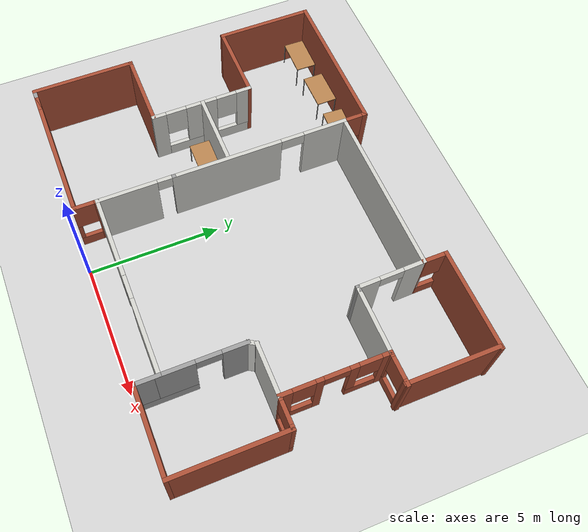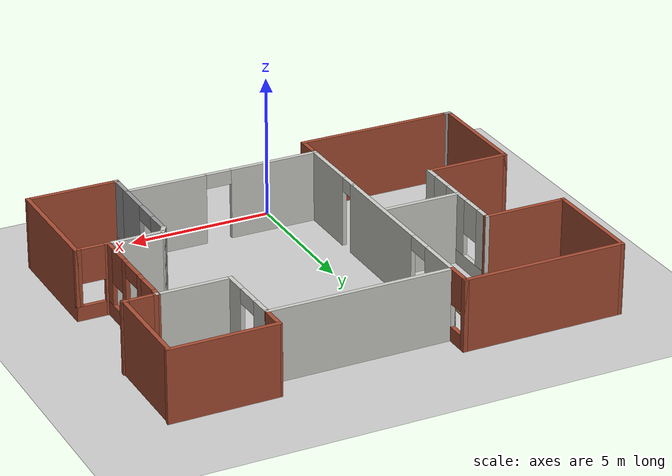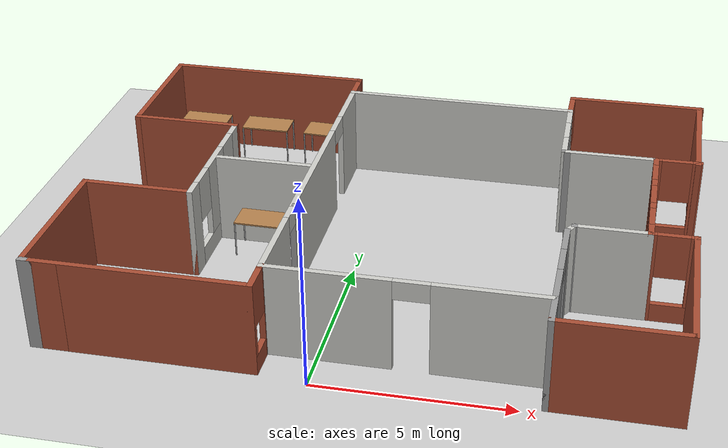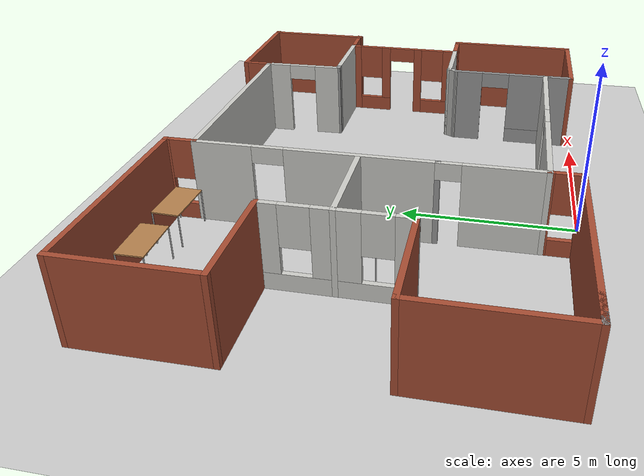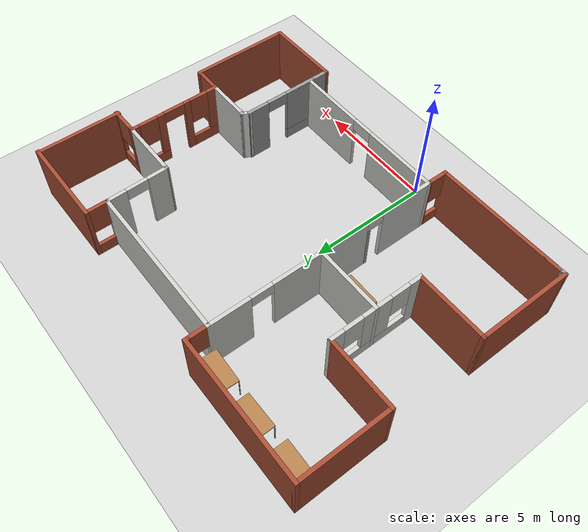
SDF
<sdf version="1.6">
 <world name="default">
  <model name="ground_plane">
   <static>1</static>
   <link name="link">
    <collision name="collision">
     <geometry><plane><normal>0 0 1</normal><size>100 100</size></plane></geometry>
     <surface><friction><ode><mu>100</mu><mu2>50</mu2></ode></friction></surface>
    </collision>
    <visual name="visual">
     <cast_shadows>0</cast_shadows>
     <geometry><plane><normal>0 0 1</normal><size>100 100</size></plane></geometry>
     <material>
      <script><uri>file://media/materials/scripts/gazebo.material</uri><name>Gazebo/Grey</name></script>
     </material>
    </visual>
   </link>
  </model>
  <model name="building_project3">
   <pose>0.90611 5.85511 0 0 -0 0</pose>
   <link name="Wall_0">
    <collision name="Wall_0_Collision">
     <geometry><box><size>4 0.15 2.5</size></box></geometry>
     <pose>0 0 1.25 0 -0 0</pose>
    </collision>
    <visual name="Wall_0_Visual">
     <pose>0 0 1.25 0 -0 0</pose>
     <geometry><box><size>4 0.15 2.5</size></box></geometry>
     <material>
      <script><uri>file://media/materials/scripts/gazebo.material</uri><name>Gazebo/Bricks</name></script>
      <ambient>1 1 1 1</ambient>
     </material>
    </visual>
    <pose>-7.79821 -3.73251 0 0 -0 1.5708</pose>
   </link>
   <link name="Wall_1">
    <collision name="Wall_1_Collision">
     <geometry><box><size>3 0.15 2.5</size></box></geometry>
     <pose>0 0 1.25 0 -0 0</pose>
    </collision>
    <visual name="Wall_1_Visual">
     <pose>0 0 1.25 0 -0 0</pose>
     <geometry><box><size>3 0.15 2.5</size></box></geometry>
     <material>
      <script><uri>file://media/materials/scripts/gazebo.material</uri><name>Gazebo/Bricks</name></script>
      <ambient>1 1 1 1</ambient>
     </material>
    </visual>
    <pose>-6.37322 -1.80751 0 0 -0 0</pose>
   </link>
   <link name="Wall_10">
    <collision name="Wall_10_Collision">
     <geometry><box><size>3.5 0.15 2.5</size></box></geometry>
     <pose>0 0 1.25 0 -0 0</pose>
    </collision>
    <visual name="Wall_10_Visual">
     <pose>0 0 1.25 0 -0 0</pose>
     <geometry><box><size>3.5 0.15 2.5</size></box></geometry>
     <material>
      <script><uri>file://media/materials/scripts/gazebo.material</uri><name>Gazebo/Bricks</name></script>
      <ambient>1 1 1 1</ambient>
     </material>
    </visual>
    <pose>7.75073 3.93568 0 0 0 -1.5708</pose>
   </link>
   <link name="Wall_11">
    <pose>7.22452 2.29985 0 0 0 -3.12875</pose>
    <visual name="Wall_11_Visual_0">
     <pose>-0.512497 0 1.25 0 -0 0</pose>
     <geometry><box><size>0.270574 0.15 2.5</size></box></geometry>
     <material>
      <script><uri>file://media/materials/scripts/gazebo.material</uri><name>Gazebo/Bricks</name></script>
      <ambient>1 1 1 1</ambient>
     </material>
    </visual>
    <collision name="Wall_11_Collision_0">
     <geometry><box><size>0.270574 0.15 2.5</size></box></geometry>
     <pose>-0.512497 0 1.25 0 -0 0</pose>
    </collision>
    <visual name="Wall_11_Visual_1">
     <pose>0.135287 0 0.25 0 -0 0</pose>
     <geometry><box><size>1.02499 0.15 0.5</size></box></geometry>
     <material>
      <script><uri>file://media/materials/scripts/gazebo.material</uri><name>Gazebo/Bricks</name></script>
      <ambient>1 1 1 1</ambient>
     </material>
    </visual>
    <collision name="Wall_11_Collision_1">
     <geometry><box><size>1.02499 0.15 0.5</size></box></geometry>
     <pose>0.135287 0 0.25 0 -0 0</pose>
    </collision>
    <visual name="Wall_11_Visual_2">
     <pose>0.535287 0 1.5 0 -0 0</pose>
     <geometry><box><size>0.224994 0.15 2</size></box></geometry>
     <material>
      <script><uri>file://media/materials/scripts/gazebo.material</uri><name>Gazebo/Bricks</name></script>
      <ambient>1 1 1 1</ambient>
     </material>
    </visual>
    <collision name="Wall_11_Collision_2">
     <geometry><box><size>0.224994 0.15 2</size></box></geometry>
     <pose>0.535287 0 1.5 0 -0 0</pose>
    </collision>
    <visual name="Wall_11_Visual_3">
     <pose>0.02279 0 1.9 0 -0 0</pose>
     <geometry><box><size>0.8 0.15 1.2</size></box></geometry>
     <material>
      <script><uri>file://media/materials/scripts/gazebo.material</uri><name>Gazebo/Bricks</name></script>
      <ambient>1 1 1 1</ambient>
     </material>
    </visual>
    <collision name="Wall_11_Collision_3">
     <geometry><box><size>0.8 0.15 1.2</size></box></geometry>
     <pose>0.02279 0 1.9 0 -0 0</pose>
    </collision>
   </link>
   <link name="Wall_12">
    <pose>6.65179 0.367493 0 0 0 -1.5708</pose>
    <visual name="Wall_12_Visual_0">
     <pose>-1.80898 0 1.25 0 -0 0</pose>
     <geometry><box><size>0.382047 0.15 2.5</size></box></geometry>
     <material>
      <script><uri>file://media/materials/scripts/gazebo.material</uri><name>Gazebo/Bricks</name></script>
      <ambient>1 1 1 1</ambient>
     </material>
    </visual>
    <collision name="Wall_12_Collision_0">
     <geometry><box><size>0.382047 0.15 2.5</size></box></geometry>
     <pose>-1.80898 0 1.25 0 -0 0</pose>
    </collision>
    <visual name="Wall_12_Visual_1">
     <pose>0.546637 0 1.25 0 -0 0</pose>
     <geometry><box><size>0.282756 0.15 2.5</size></box></geometry>
     <material>
      <script><uri>file://media/materials/scripts/gazebo.material</uri><name>Gazebo/Bricks</name></script>
      <ambient>1 1 1 1</ambient>
     </material>
    </visual>
    <collision name="Wall_12_Collision_1">
     <geometry><box><size>0.282756 0.15 2.5</size></box></geometry>
     <pose>0.546637 0 1.25 0 -0 0</pose>
    </collision>
    <visual name="Wall_12_Visual_2">
     <pose>-1.05635 0 0.25 0 -0 0</pose>
     <geometry><box><size>1.12321 0.15 0.5</size></box></geometry>
     <material>
      <script><uri>file://media/materials/scripts/gazebo.material</uri><name>Gazebo/Bricks</name></script>
      <ambient>1 1 1 1</ambient>
     </material>
    </visual>
    <collision name="Wall_12_Collision_2">
     <geometry><box><size>1.12321 0.15 0.5</size></box></geometry>
     <pose>-1.05635 0 0.25 0 -0 0</pose>
    </collision>
    <visual name="Wall_12_Visual_3">
     <pose>1.34401 0 0.25 0 -0 0</pose>
     <geometry><box><size>1.31198 0.15 0.5</size></box></geometry>
     <material>
      <script><uri>file://media/materials/scripts/gazebo.material</uri><name>Gazebo/Bricks</name></script>
      <ambient>1 1 1 1</ambient>
     </material>
    </visual>
    <collision name="Wall_12_Collision_3">
     <geometry><box><size>1.31198 0.15 0.5</size></box></geometry>
     <pose>1.34401 0 0.25 0 -0 0</pose>
    </collision>
    <visual name="Wall_12_Visual_4">
     <pose>-0.656347 0 1.5 0 -0 0</pose>
     <geometry><box><size>0.323212 0.15 2</size></box></geometry>
     <material>
      <script><uri>file://media/materials/scripts/gazebo.material</uri><name>Gazebo/Bricks</name></script>
      <ambient>1 1 1 1</ambient>
     </material>
    </visual>
    <collision name="Wall_12_Collision_4">
     <geometry><box><size>0.323212 0.15 2</size></box></geometry>
     <pose>-0.656347 0 1.5 0 -0 0</pose>
    </collision>
    <visual name="Wall_12_Visual_5">
     <pose>-0.656347 0 1.5 0 -0 0</pose>
     <geometry><box><size>0.323212 0.15 2</size></box></geometry>
     <material>
      <script><uri>file://media/materials/scripts/gazebo.material</uri><name>Gazebo/Bricks</name></script>
      <ambient>1 1 1 1</ambient>
     </material>
    </visual>
    <collision name="Wall_12_Collision_5">
     <geometry><box><size>0.323212 0.15 2</size></box></geometry>
     <pose>-0.656347 0 1.5 0 -0 0</pose>
    </collision>
    <visual name="Wall_12_Visual_6">
     <pose>1.74401 0 1.5 0 -0 0</pose>
     <geometry><box><size>0.511985 0.15 2</size></box></geometry>
     <material>
      <script><uri>file://media/materials/scripts/gazebo.material</uri><name>Gazebo/Bricks</name></script>
      <ambient>1 1 1 1</ambient>
     </material>
    </visual>
    <collision name="Wall_12_Collision_6">
     <geometry><box><size>0.511985 0.15 2</size></box></geometry>
     <pose>1.74401 0 1.5 0 -0 0</pose>
    </collision>
    <visual name="Wall_12_Visual_7">
     <pose>-1.21795 0 1.9 0 -0 0</pose>
     <geometry><box><size>0.8 0.15 1.2</size></box></geometry>
     <material>
      <script><uri>file://media/materials/scripts/gazebo.material</uri><name>Gazebo/Bricks</name></script>
      <ambient>1 1 1 1</ambient>
     </material>
    </visual>
    <collision name="Wall_12_Collision_7">
     <geometry><box><size>0.8 0.15 1.2</size></box></geometry>
     <pose>-1.21795 0 1.9 0 -0 0</pose>
    </collision>
    <visual name="Wall_12_Visual_8">
     <pose>1.08801 0 1.9 0 -0 0</pose>
     <geometry><box><size>0.8 0.15 1.2</size></box></geometry>
     <material>
      <script><uri>file://media/materials/scripts/gazebo.material</uri><name>Gazebo/Bricks</name></script>
      <ambient>1 1 1 1</ambient>
     </material>
    </visual>
    <collision name="Wall_12_Collision_8">
     <geometry><box><size>0.8 0.15 1.2</size></box></geometry>
     <pose>1.08801 0 1.9 0 -0 0</pose>
    </collision>
    <visual name="Wall_12_Visual_9">
     <pose>-0.044741 0 2.25 0 -0 0</pose>
     <geometry><box><size>0.9 0.15 0.5</size></box></geometry>
     <material>
      <script><uri>file://media/materials/scripts/gazebo.material</uri><name>Gazebo/Bricks</name></script>
      <ambient>1 1 1 1</ambient>
     </material>
    </visual>
    <collision name="Wall_12_Collision_9">
     <geometry><box><size>0.9 0.15 0.5</size></box></geometry>
     <pose>-0.044741 0 2.25 0 -0 0</pose>
    </collision>
    <visual name="Wall_12_Visual_10">
     <pose>-0.044741 0 2.25 0 -0 0</pose>
     <geometry><box><size>0.9 0.15 0.5</size></box></geometry>
     <material>
      <script><uri>file://media/materials/scripts/gazebo.material</uri><name>Gazebo/Bricks</name></script>
      <ambient>1 1 1 1</ambient>
     </material>
    </visual>
    <collision name="Wall_12_Collision_10">
     <geometry><box><size>0.9 0.15 0.5</size></box></geometry>
     <pose>-0.044741 0 2.25 0 -0 0</pose>
    </collision>
   </link>
   <link name="Wall_13">
    <pose>7.20179 -1.55751 0 0 -0 0</pose>
    <visual name="Wall_13_Visual_0">
     <pose>-0.511837 0 1.25 0 -0 0</pose>
     <geometry><box><size>0.226327 0.15 2.5</size></box></geometry>
     <material>
      <script><uri>file://media/materials/scripts/gazebo.material</uri><name>Gazebo/Bricks</name></script>
      <ambient>1 1 1 1</ambient>
     </material>
    </visual>
    <collision name="Wall_13_Collision_0">
     <geometry><box><size>0.226327 0.15 2.5</size></box></geometry>
     <pose>-0.511837 0 1.25 0 -0 0</pose>
    </collision>
    <visual name="Wall_13_Visual_1">
     <pose>0.113163 0 0.25 0 -0 0</pose>
     <geometry><box><size>1.02367 0.15 0.5</size></box></geometry>
     <material>
      <script><uri>file://media/materials/scripts/gazebo.material</uri><name>Gazebo/Bricks</name></script>
      <ambient>1 1 1 1</ambient>
     </material>
    </visual>
    <collision name="Wall_13_Collision_1">
     <geometry><box><size>1.02367 0.15 0.5</size></box></geometry>
     <pose>0.113163 0 0.25 0 -0 0</pose>
    </collision>
    <visual name="Wall_13_Visual_2">
     <pose>0.513163 0 1.5 0 -0 0</pose>
     <geometry><box><size>0.223673 0.15 2</size></box></geometry>
     <material>
      <script><uri>file://media/materials/scripts/gazebo.material</uri><name>Gazebo/Bricks</name></script>
      <ambient>1 1 1 1</ambient>
     </material>
    </visual>
    <collision name="Wall_13_Collision_2">
     <geometry><box><size>0.223673 0.15 2</size></box></geometry>
     <pose>0.513163 0 1.5 0 -0 0</pose>
    </collision>
    <visual name="Wall_13_Visual_3">
     <pose>0.001327 0 1.9 0 -0 0</pose>
     <geometry><box><size>0.8 0.15 1.2</size></box></geometry>
     <material>
      <script><uri>file://media/materials/scripts/gazebo.material</uri><name>Gazebo/Bricks</name></script>
      <ambient>1 1 1 1</ambient>
     </material>
    </visual>
    <collision name="Wall_13_Collision_3">
     <geometry><box><size>0.8 0.15 1.2</size></box></geometry>
     <pose>0.001327 0 1.9 0 -0 0</pose>
    </collision>
   </link>
   <link name="Wall_14">
    <collision name="Wall_14_Collision">
     <geometry><box><size>4.25 0.15 2.5</size></box></geometry>
     <pose>0 0 1.25 0 -0 0</pose>
    </collision>
    <visual name="Wall_14_Visual">
     <pose>0 0 1.25 0 -0 0</pose>
     <geometry><box><size>4.25 0.15 2.5</size></box></geometry>
     <material>
      <script><uri>file://media/materials/scripts/gazebo.material</uri><name>Gazebo/Bricks</name></script>
      <ambient>1 1 1 1</ambient>
     </material>
    </visual>
    <pose>7.75178 -3.60751 0 0 0 -1.5708</pose>
   </link>
   <link name="Wall_15">
    <collision name="Wall_15_Collision">
     <geometry><box><size>3.25 0.15 2.5</size></box></geometry>
     <pose>0 0 1.25 0 -0 0</pose>
    </collision>
    <visual name="Wall_15_Visual">
     <pose>0 0 1.25 0 -0 0</pose>
     <geometry><box><size>3.25 0.15 2.5</size></box></geometry>
     <material>
      <script><uri>file://media/materials/scripts/gazebo.material</uri><name>Gazebo/Bricks</name></script>
      <ambient>1 1 1 1</ambient>
     </material>
    </visual>
    <pose>6.20179 -5.65751 0 0 -0 3.14159</pose>
   </link>
   <link name="Wall_16">
    <collision name="Wall_16_Collision">
     <geometry><box><size>1 0.15 2.5</size></box></geometry>
     <pose>0 0 1.25 0 -0 0</pose>
    </collision>
    <visual name="Wall_16_Visual">
     <pose>0 0 1.25 0 -0 0</pose>
     <geometry><box><size>1 0.15 2.5</size></box></geometry>
     <material>
      <script><uri>file://media/materials/scripts/gazebo.material</uri><name>Gazebo/Grey</name></script>
      <ambient>1 1 1 1</ambient>
     </material>
    </visual>
    <pose>4.65179 -5.23251 0 0 -0 1.5708</pose>
   </link>
   <link name="Wall_17">
    <pose>1.22679 -4.80751 0 0 -0 3.14159</pose>
    <visual name="Wall_17_Visual_0">
     <pose>-2.05036 0 1.25 0 -0 0</pose>
     <geometry><box><size>2.89928 0.15 2.5</size></box></geometry>
     <material>
      <script><uri>file://media/materials/scripts/gazebo.material</uri><name>Gazebo/CeilingTiled</name></script>
      <ambient>1 1 1 1</ambient>
     </material>
    </visual>
    <collision name="Wall_17_Collision_0">
     <geometry><box><size>2.89928 0.15 2.5</size></box></geometry>
     <pose>-2.05036 0 1.25 0 -0 0</pose>
    </collision>
    <visual name="Wall_17_Visual_1">
     <pose>1.89964 0 1.25 0 -0 0</pose>
     <geometry><box><size>3.20072 0.15 2.5</size></box></geometry>
     <material>
      <script><uri>file://media/materials/scripts/gazebo.material</uri><name>Gazebo/CeilingTiled</name></script>
      <ambient>1 1 1 1</ambient>
     </material>
    </visual>
    <collision name="Wall_17_Collision_1">
     <geometry><box><size>3.20072 0.15 2.5</size></box></geometry>
     <pose>1.89964 0 1.25 0 -0 0</pose>
    </collision>
    <visual name="Wall_17_Visual_2">
     <pose>-0.150724 0 2.25 0 -0 0</pose>
     <geometry><box><size>0.9 0.15 0.5</size></box></geometry>
     <material>
      <script><uri>file://media/materials/scripts/gazebo.material</uri><name>Gazebo/CeilingTiled</name></script>
      <ambient>1 1 1 1</ambient>
     </material>
    </visual>
    <collision name="Wall_17_Collision_2">
     <geometry><box><size>0.9 0.15 0.5</size></box></geometry>
     <pose>-0.150724 0 2.25 0 -0 0</pose>
    </collision>
   </link>
   <link name="Wall_18">
    <pose>-2.19821 -5.23251 0 0 0 -1.5708</pose>
    <visual name="Wall_18_Visual_0">
     <pose>-0.400024 0 1.25 0 -0 0</pose>
     <geometry><box><size>0.199951 0.15 2.5</size></box></geometry>
     <material>
      <script><uri>file://media/materials/scripts/gazebo.material</uri><name>Gazebo/Bricks</name></script>
      <ambient>1 1 1 1</ambient>
     </material>
    </visual>
    <collision name="Wall_18_Collision_0">
     <geometry><box><size>0.199951 0.15 2.5</size></box></geometry>
     <pose>-0.400024 0 1.25 0 -0 0</pose>
    </collision>
    <visual name="Wall_18_Visual_1">
     <pose>0.099976 0 0.25 0 -0 0</pose>
     <geometry><box><size>0.800049 0.15 0.5</size></box></geometry>
     <material>
      <script><uri>file://media/materials/scripts/gazebo.material</uri><name>Gazebo/Bricks</name></script>
      <ambient>1 1 1 1</ambient>
     </material>
    </visual>
    <collision name="Wall_18_Collision_1">
     <geometry><box><size>0.800049 0.15 0.5</size></box></geometry>
     <pose>0.099976 0 0.25 0 -0 0</pose>
    </collision>
    <visual name="Wall_18_Visual_2">
     <pose>0.499976 0 1.5 0 -0 0</pose>
     <geometry><box><size>4.9e-05 0.15 2</size></box></geometry>
     <material>
      <script><uri>file://media/materials/scripts/gazebo.material</uri><name>Gazebo/Bricks</name></script>
      <ambient>1 1 1 1</ambient>
     </material>
    </visual>
    <collision name="Wall_18_Collision_2">
     <geometry><box><size>4.9e-05 0.15 2</size></box></geometry>
     <pose>0.499976 0 1.5 0 -0 0</pose>
    </collision>
    <visual name="Wall_18_Visual_3">
     <pose>0.099951 0 1.9 0 -0 0</pose>
     <geometry><box><size>0.8 0.15 1.2</size></box></geometry>
     <material>
      <script><uri>file://media/materials/scripts/gazebo.material</uri><name>Gazebo/Bricks</name></script>
      <ambient>1 1 1 1</ambient>
     </material>
    </visual>
    <collision name="Wall_18_Collision_3">
     <geometry><box><size>0.8 0.15 1.2</size></box></geometry>
     <pose>0.099951 0 1.9 0 -0 0</pose>
    </collision>
   </link>
   <link name="Wall_19">
    <collision name="Wall_19_Collision">
     <geometry><box><size>5.5 0.15 2.5</size></box></geometry>
     <pose>0 0 1.25 0 -0 0</pose>
    </collision>
    <visual name="Wall_19_Visual">
     <pose>0 0 1.25 0 -0 0</pose>
     <geometry><box><size>5.5 0.15 2.5</size></box></geometry>
     <material>
      <script><uri>file://media/materials/scripts/gazebo.material</uri><name>Gazebo/Bricks</name></script>
      <ambient>1 1 1 1</ambient>
     </material>
    </visual>
    <pose>-4.87322 -5.65751 0 0 -0 3.14159</pose>
   </link>
   <link name="Wall_2">
    <pose>-4.94822 0.117493 0 0 -0 1.5708</pose>
    <visual name="Wall_2_Visual_0">
     <pose>-1.72015 0 1.25 0 -0 0</pose>
     <geometry><box><size>0.559707 0.15 2.5</size></box></geometry>
     <material>
      <script><uri>file://media/materials/scripts/gazebo.material</uri><name>Gazebo/CeilingTiled</name></script>
      <ambient>1 1 1 1</ambient>
     </material>
    </visual>
    <collision name="Wall_2_Collision_0">
     <geometry><box><size>0.559707 0.15 2.5</size></box></geometry>
     <pose>-1.72015 0 1.25 0 -0 0</pose>
    </collision>
    <visual name="Wall_2_Visual_1">
     <pose>0.279853 0 0.25 0 -0 0</pose>
     <geometry><box><size>3.44029 0.15 0.5</size></box></geometry>
     <material>
      <script><uri>file://media/materials/scripts/gazebo.material</uri><name>Gazebo/CeilingTiled</name></script>
      <ambient>1 1 1 1</ambient>
     </material>
    </visual>
    <collision name="Wall_2_Collision_1">
     <geometry><box><size>3.44029 0.15 0.5</size></box></geometry>
     <pose>0.279853 0 0.25 0 -0 0</pose>
    </collision>
    <visual name="Wall_2_Visual_2">
     <pose>-0.028904 0 1.5 0 -0 0</pose>
     <geometry><box><size>1.22278 0.15 2</size></box></geometry>
     <material>
      <script><uri>file://media/materials/scripts/gazebo.material</uri><name>Gazebo/CeilingTiled</name></script>
      <ambient>1 1 1 1</ambient>
     </material>
    </visual>
    <collision name="Wall_2_Collision_2">
     <geometry><box><size>1.22278 0.15 2</size></box></geometry>
     <pose>-0.028904 0 1.5 0 -0 0</pose>
    </collision>
    <visual name="Wall_2_Visual_3">
     <pose>1.69124 0 1.5 0 -0 0</pose>
     <geometry><box><size>0.617514 0.15 2</size></box></geometry>
     <material>
      <script><uri>file://media/materials/scripts/gazebo.material</uri><name>Gazebo/CeilingTiled</name></script>
      <ambient>1 1 1 1</ambient>
     </material>
    </visual>
    <collision name="Wall_2_Collision_3">
     <geometry><box><size>0.617514 0.15 2</size></box></geometry>
     <pose>1.69124 0 1.5 0 -0 0</pose>
    </collision>
    <visual name="Wall_2_Visual_4">
     <pose>-1.04029 0 1.9 0 -0 0</pose>
     <geometry><box><size>0.8 0.15 1.2</size></box></geometry>
     <material>
      <script><uri>file://media/materials/scripts/gazebo.material</uri><name>Gazebo/CeilingTiled</name></script>
      <ambient>1 1 1 1</ambient>
     </material>
    </visual>
    <collision name="Wall_2_Collision_4">
     <geometry><box><size>0.8 0.15 1.2</size></box></geometry>
     <pose>-1.04029 0 1.9 0 -0 0</pose>
    </collision>
    <visual name="Wall_2_Visual_5">
     <pose>0.982486 0 1.9 0 -0 0</pose>
     <geometry><box><size>0.8 0.15 1.2</size></box></geometry>
     <material>
      <script><uri>file://media/materials/scripts/gazebo.material</uri><name>Gazebo/CeilingTiled</name></script>
      <ambient>1 1 1 1</ambient>
     </material>
    </visual>
    <collision name="Wall_2_Collision_5">
     <geometry><box><size>0.8 0.15 1.2</size></box></geometry>
     <pose>0.982486 0 1.9 0 -0 0</pose>
    </collision>
   </link>
   <link name="Wall_20">
    <collision name="Wall_20_Collision">
     <geometry><box><size>0.4 0.15 2.5</size></box></geometry>
     <pose>0 0 1.25 0 -0 0</pose>
    </collision>
    <visual name="Wall_20_Visual">
     <pose>0 0 1.25 0 -0 0</pose>
     <geometry><box><size>0.4 0.15 2.5</size></box></geometry>
     <material>
      <script><uri>file://media/materials/scripts/gazebo.material</uri><name>Gazebo/Grey</name></script>
      <ambient>1 1 1 1</ambient>
     </material>
    </visual>
    <pose>-7.67321 -5.65751 0 0 0 -3.14159</pose>
   </link>
   <link name="Wall_21">
    <collision name="Wall_21_Collision">
     <geometry><box><size>1 0.15 2.5</size></box></geometry>
     <pose>0 0 1.25 0 -0 0</pose>
    </collision>
    <visual name="Wall_21_Visual">
     <pose>0 0 1.25 0 -0 0</pose>
     <geometry><box><size>1 0.15 2.5</size></box></geometry>
     <material>
      <script><uri>file://media/materials/scripts/gazebo.material</uri><name>Gazebo/Bricks</name></script>
      <ambient>1 1 1 1</ambient>
     </material>
    </visual>
    <pose>-7.37322 -5.65751 0 0 -0 0</pose>
   </link>
   <link name="Wall_23">
    <pose>-2.19821 -3.38251 0 0 -0 1.5708</pose>
    <visual name="Wall_23_Visual_0">
     <pose>-0.35198 0 1.25 0 -0 0</pose>
     <geometry><box><size>2.29604 0.15 2.5</size></box></geometry>
     <material>
      <script><uri>file://media/materials/scripts/gazebo.material</uri><name>Gazebo/CeilingTiled</name></script>
      <ambient>1 1 1 1</ambient>
     </material>
    </visual>
    <collision name="Wall_23_Collision_0">
     <geometry><box><size>2.29604 0.15 2.5</size></box></geometry>
     <pose>-0.35198 0 1.25 0 -0 0</pose>
    </collision>
    <visual name="Wall_23_Visual_1">
     <pose>1.14802 0 2.25 0 -0 0</pose>
     <geometry><box><size>0.70396 0.15 0.5</size></box></geometry>
     <material>
      <script><uri>file://media/materials/scripts/gazebo.material</uri><name>Gazebo/CeilingTiled</name></script>
      <ambient>1 1 1 1</ambient>
     </material>
    </visual>
    <collision name="Wall_23_Collision_1">
     <geometry><box><size>0.70396 0.15 0.5</size></box></geometry>
     <pose>1.14802 0 2.25 0 -0 0</pose>
    </collision>
   </link>
   <link name="Wall_24">
    <collision name="Wall_24_Collision">
     <geometry><box><size>0.15 0.15 2.5</size></box></geometry>
     <pose>0 0 1.25 0 -0 0</pose>
    </collision>
    <visual name="Wall_24_Visual">
     <pose>0 0 1.25 0 -0 0</pose>
     <geometry><box><size>0.15 0.15 2.5</size></box></geometry>
     <material>
      <script><uri>file://media/materials/scripts/gazebo.material</uri><name>Gazebo/Grey</name></script>
      <ambient>1 1 1 1</ambient>
     </material>
    </visual>
    <pose>-2.19821 -1.95751 0 0 -0 0</pose>
   </link>
   <link name="Wall_25">
    <pose>-2.19821 1.41749 0 0 -0 1.5708</pose>
    <visual name="Wall_25_Visual_0">
     <pose>-1.31987 0 1.25 0 -0 0</pose>
     <geometry><box><size>4.26025 0.15 2.5</size></box></geometry>
     <material>
      <script><uri>file://media/materials/scripts/gazebo.material</uri><name>Gazebo/CeilingTiled</name></script>
      <ambient>1 1 1 1</ambient>
     </material>
    </visual>
    <collision name="Wall_25_Collision_0">
     <geometry><box><size>4.26025 0.15 2.5</size></box></geometry>
     <pose>-1.31987 0 1.25 0 -0 0</pose>
    </collision>
    <visual name="Wall_25_Visual_1">
     <pose>2.58013 0 1.25 0 -0 0</pose>
     <geometry><box><size>1.73975 0.15 2.5</size></box></geometry>
     <material>
      <script><uri>file://media/materials/scripts/gazebo.material</uri><name>Gazebo/CeilingTiled</name></script>
      <ambient>1 1 1 1</ambient>
     </material>
    </visual>
    <collision name="Wall_25_Collision_1">
     <geometry><box><size>1.73975 0.15 2.5</size></box></geometry>
     <pose>2.58013 0 1.25 0 -0 0</pose>
    </collision>
    <visual name="Wall_25_Visual_2">
     <pose>1.26025 0 2.25 0 -0 0</pose>
     <geometry><box><size>0.9 0.15 0.5</size></box></geometry>
     <material>
      <script><uri>file://media/materials/scripts/gazebo.material</uri><name>Gazebo/CeilingTiled</name></script>
      <ambient>1 1 1 1</ambient>
     </material>
    </visual>
    <collision name="Wall_25_Collision_2">
     <geometry><box><size>0.9 0.15 0.5</size></box></geometry>
     <pose>1.26025 0 2.25 0 -0 0</pose>
    </collision>
   </link>
   <link name="Wall_27">
    <collision name="Wall_27_Collision">
     <geometry><box><size>2.75 0.15 2.5</size></box></geometry>
     <pose>0 0 1.25 0 -0 0</pose>
    </collision>
    <visual name="Wall_27_Visual">
     <pose>0 0 1.25 0 -0 0</pose>
     <geometry><box><size>2.75 0.15 2.5</size></box></geometry>
     <material>
      <script><uri>file://media/materials/scripts/gazebo.material</uri><name>Gazebo/CeilingTiled</name></script>
      <ambient>1 1 1 1</ambient>
     </material>
    </visual>
    <pose>-3.64864 0.1508 0 0 -0 0</pose>
   </link>
   <link name="Wall_29">
    <collision name="Wall_29_Collision">
     <geometry><box><size>2.5 0.15 2.5</size></box></geometry>
     <pose>0 0 1.25 0 -0 0</pose>
    </collision>
    <visual name="Wall_29_Visual">
     <pose>0 0 1.25 0 -0 0</pose>
     <geometry><box><size>2.5 0.15 2.5</size></box></geometry>
     <material>
      <script><uri>file://media/materials/scripts/gazebo.material</uri><name>Gazebo/CeilingTiled</name></script>
      <ambient>1 1 1 1</ambient>
     </material>
    </visual>
    <pose>5.47678 2.29249 0 0 -0 3.14159</pose>
   </link>
   <link name="Wall_3">
    <collision name="Wall_3_Collision">
     <geometry><box><size>3 0.15 2.5</size></box></geometry>
     <pose>0 0 1.25 0 -0 0</pose>
    </collision>
    <visual name="Wall_3_Visual">
     <pose>0 0 1.25 0 -0 0</pose>
     <geometry><box><size>3 0.15 2.5</size></box></geometry>
     <material>
      <script><uri>file://media/materials/scripts/gazebo.material</uri><name>Gazebo/Bricks</name></script>
      <ambient>1 1 1 1</ambient>
     </material>
    </visual>
    <pose>-6.37322 2.04249 0 0 -0 3.14159</pose>
   </link>
   <link name="Wall_30">
    <collision name="Wall_30_Collision">
     <geometry><box><size>0.25 0.15 2.5</size></box></geometry>
     <pose>0 0 1.25 0 -0 0</pose>
    </collision>
    <visual name="Wall_30_Visual">
     <pose>0 0 1.25 0 -0 0</pose>
     <geometry><box><size>0.25 0.15 2.5</size></box></geometry>
     <material>
      <script><uri>file://media/materials/scripts/gazebo.material</uri><name>Gazebo/Grey</name></script>
      <ambient>1 1 1 1</ambient>
     </material>
    </visual>
    <pose>4.25178 2.29249 0 0 -0 3.14159</pose>
   </link>
   <link name="Wall_31">
    <pose>4.17678 3.54249 0 0 -0 1.59079</pose>
    <visual name="Wall_31_Visual_0">
     <pose>-0.874507 0 1.25 0 -0 0</pose>
     <geometry><box><size>0.901486 0.15 2.5</size></box></geometry>
     <material>
      <script><uri>file://media/materials/scripts/gazebo.material</uri><name>Gazebo/CeilingTiled</name></script>
      <ambient>1 1 1 1</ambient>
     </material>
    </visual>
    <collision name="Wall_31_Collision_0">
     <geometry><box><size>0.901486 0.15 2.5</size></box></geometry>
     <pose>-0.874507 0 1.25 0 -0 0</pose>
    </collision>
    <visual name="Wall_31_Visual_1">
     <pose>0.900743 0 1.25 0 -0 0</pose>
     <geometry><box><size>0.849014 0.15 2.5</size></box></geometry>
     <material>
      <script><uri>file://media/materials/scripts/gazebo.material</uri><name>Gazebo/CeilingTiled</name></script>
      <ambient>1 1 1 1</ambient>
     </material>
    </visual>
    <collision name="Wall_31_Collision_1">
     <geometry><box><size>0.849014 0.15 2.5</size></box></geometry>
     <pose>0.900743 0 1.25 0 -0 0</pose>
    </collision>
    <visual name="Wall_31_Visual_2">
     <pose>0.026236 0 2.25 0 -0 0</pose>
     <geometry><box><size>0.9 0.15 0.5</size></box></geometry>
     <material>
      <script><uri>file://media/materials/scripts/gazebo.material</uri><name>Gazebo/CeilingTiled</name></script>
      <ambient>1 1 1 1</ambient>
     </material>
    </visual>
    <collision name="Wall_31_Collision_2">
     <geometry><box><size>0.9 0.15 0.5</size></box></geometry>
     <pose>0.026236 0 2.25 0 -0 0</pose>
    </collision>
   </link>
   <link name="Wall_33">
    <pose>4.65179 -3.73251 0 0 -0 1.5708</pose>
    <visual name="Wall_33_Visual_0">
     <pose>-0.932675 0 0.25 0 -0 0</pose>
     <geometry><box><size>2.13465 0.15 0.5</size></box></geometry>
     <material>
      <script><uri>file://media/materials/scripts/gazebo.material</uri><name>Gazebo/Grey</name></script>
      <ambient>1 1 1 1</ambient>
     </material>
    </visual>
    <collision name="Wall_33_Collision_0">
     <geometry><box><size>2.13465 0.15 0.5</size></box></geometry>
     <pose>-0.932675 0 0.25 0 -0 0</pose>
    </collision>
    <visual name="Wall_33_Visual_1">
     <pose>1.51733 0 1.25 0 -0 0</pose>
     <geometry><box><size>0.96535 0.15 2.5</size></box></geometry>
     <material>
      <script><uri>file://media/materials/scripts/gazebo.material</uri><name>Gazebo/Grey</name></script>
      <ambient>1 1 1 1</ambient>
     </material>
    </visual>
    <collision name="Wall_33_Collision_1">
     <geometry><box><size>0.96535 0.15 2.5</size></box></geometry>
     <pose>1.51733 0 1.25 0 -0 0</pose>
    </collision>
    <visual name="Wall_33_Visual_2">
     <pose>-0.552878 0 1.5 0 -0 0</pose>
     <geometry><box><size>1.37506 0.15 2</size></box></geometry>
     <material>
      <script><uri>file://media/materials/scripts/gazebo.material</uri><name>Gazebo/Grey</name></script>
      <ambient>1 1 1 1</ambient>
     </material>
    </visual>
    <collision name="Wall_33_Collision_2">
     <geometry><box><size>1.37506 0.15 2</size></box></geometry>
     <pose>-0.552878 0 1.5 0 -0 0</pose>
    </collision>
    <visual name="Wall_33_Visual_3">
     <pose>0.58465 0 2.25 0 -0 0</pose>
     <geometry><box><size>0.9 0.15 0.5</size></box></geometry>
     <material>
      <script><uri>file://media/materials/scripts/gazebo.material</uri><name>Gazebo/Grey</name></script>
      <ambient>1 1 1 1</ambient>
     </material>
    </visual>
    <collision name="Wall_33_Collision_3">
     <geometry><box><size>0.9 0.15 0.5</size></box></geometry>
     <pose>0.58465 0 2.25 0 -0 0</pose>
    </collision>
   </link>
   <link name="Wall_36">
    <collision name="Wall_36_Collision">
     <geometry><box><size>2 0.15 2.5</size></box></geometry>
     <pose>0 0 1.25 0 -0 0</pose>
    </collision>
    <visual name="Wall_36_Visual">
     <pose>0 0 1.25 0 -0 0</pose>
     <geometry><box><size>2 0.15 2.5</size></box></geometry>
     <material>
      <script><uri>file://media/materials/scripts/gazebo.material</uri><name>Gazebo/CeilingTiled</name></script>
      <ambient>1 1 1 1</ambient>
     </material>
    </visual>
    <pose>5.72678 -1.55751 0 0 -0 3.14159</pose>
   </link>
   <link name="Wall_37">
    <collision name="Wall_37_Collision">
     <geometry><box><size>0.15 0.15 2.5</size></box></geometry>
     <pose>0 0 1.25 0 -0 0</pose>
    </collision>
    <visual name="Wall_37_Visual">
     <pose>0 0 1.25 0 -0 0</pose>
     <geometry><box><size>0.15 0.15 2.5</size></box></geometry>
     <material>
      <script><uri>file://media/materials/scripts/gazebo.material</uri><name>Gazebo/Grey</name></script>
      <ambient>1 1 1 1</ambient>
     </material>
    </visual>
    <pose>4.80178 -1.55751 0 0 -0 0</pose>
   </link>
   <link name="Wall_38">
    <collision name="Wall_38_Collision">
     <geometry><box><size>0.441548 0.15 2.5</size></box></geometry>
     <pose>0 0 1.25 0 -0 0</pose>
    </collision>
    <visual name="Wall_38_Visual">
     <pose>0 0 1.25 0 -0 0</pose>
     <geometry><box><size>0.441548 0.15 2.5</size></box></geometry>
     <material>
      <script><uri>file://media/materials/scripts/gazebo.material</uri><name>Gazebo/CeilingTiled</name></script>
      <ambient>1 1 1 1</ambient>
     </material>
    </visual>
    <pose>4.72678 -1.68251 0 0 0 -2.11122</pose>
   </link>
   <link name="Wall_4">
    <collision name="Wall_4_Collision">
     <geometry><box><size>3.75 0.15 2.5</size></box></geometry>
     <pose>0 0 1.25 0 -0 0</pose>
    </collision>
    <visual name="Wall_4_Visual">
     <pose>0 0 1.25 0 -0 0</pose>
     <geometry><box><size>3.75 0.15 2.5</size></box></geometry>
     <material>
      <script><uri>file://media/materials/scripts/gazebo.material</uri><name>Gazebo/Bricks</name></script>
      <ambient>1 1 1 1</ambient>
     </material>
    </visual>
    <pose>-7.79821 3.84249 0 0 -0 1.5708</pose>
   </link>
   <link name="Wall_5">
    <collision name="Wall_5_Collision">
     <geometry><box><size>5.75 0.15 2.5</size></box></geometry>
     <pose>0 0 1.25 0 -0 0</pose>
    </collision>
    <visual name="Wall_5_Visual">
     <pose>0 0 1.25 0 -0 0</pose>
     <geometry><box><size>5.75 0.15 2.5</size></box></geometry>
     <material>
      <script><uri>file://media/materials/scripts/gazebo.material</uri><name>Gazebo/Bricks</name></script>
      <ambient>1 1 1 1</ambient>
     </material>
    </visual>
    <pose>-4.99822 5.64249 0 0 -0 0</pose>
   </link>
   <link name="Wall_6">
    <pose>-2.19821 5.21749 0 0 0 -1.5708</pose>
    <visual name="Wall_6_Visual_0">
     <pose>-0.393794 0 1.25 0 -0 0</pose>
     <geometry><box><size>0.212412 0.15 2.5</size></box></geometry>
     <material>
      <script><uri>file://media/materials/scripts/gazebo.material</uri><name>Gazebo/Bricks</name></script>
      <ambient>1 1 1 1</ambient>
     </material>
    </visual>
    <collision name="Wall_6_Collision_0">
     <geometry><box><size>0.212412 0.15 2.5</size></box></geometry>
     <pose>-0.393794 0 1.25 0 -0 0</pose>
    </collision>
    <visual name="Wall_6_Visual_1">
     <pose>0.106206 0 0.25 0 -0 0</pose>
     <geometry><box><size>0.787588 0.15 0.5</size></box></geometry>
     <material>
      <script><uri>file://media/materials/scripts/gazebo.material</uri><name>Gazebo/Bricks</name></script>
      <ambient>1 1 1 1</ambient>
     </material>
    </visual>
    <collision name="Wall_6_Collision_1">
     <geometry><box><size>0.787588 0.15 0.5</size></box></geometry>
     <pose>0.106206 0 0.25 0 -0 0</pose>
    </collision>
    <visual name="Wall_6_Visual_2">
     <pose>0.106206 0 1.9 0 -0 0</pose>
     <geometry><box><size>0.787588 0.15 1.2</size></box></geometry>
     <material>
      <script><uri>file://media/materials/scripts/gazebo.material</uri><name>Gazebo/Bricks</name></script>
      <ambient>1 1 1 1</ambient>
     </material>
    </visual>
    <collision name="Wall_6_Collision_2">
     <geometry><box><size>0.787588 0.15 1.2</size></box></geometry>
     <pose>0.106206 0 1.9 0 -0 0</pose>
    </collision>
   </link>
   <link name="Wall_7">
    <collision name="Wall_7_Collision">
     <geometry><box><size>6.5 0.15 2.5</size></box></geometry>
     <pose>0 0 1.25 0 -0 0</pose>
    </collision>
    <visual name="Wall_7_Visual">
     <pose>0 0 1.25 0 -0 0</pose>
     <geometry><box><size>6.5 0.15 2.5</size></box></geometry>
     <material>
      <script><uri>file://media/materials/scripts/gazebo.material</uri><name>Gazebo/CeilingTiled</name></script>
      <ambient>1 1 1 1</ambient>
     </material>
    </visual>
    <pose>0.976785 4.79249 0 0 -0 0</pose>
   </link>
   <link name="Wall_8">
    <pose>4.15179 5.21749 0 0 -0 1.5708</pose>
    <visual name="Wall_8_Visual_0">
     <pose>-0.445523 0 1.25 0 -0 0</pose>
     <geometry><box><size>0.108954 0.15 2.5</size></box></geometry>
     <material>
      <script><uri>file://media/materials/scripts/gazebo.material</uri><name>Gazebo/Bricks</name></script>
      <ambient>1 1 1 1</ambient>
     </material>
    </visual>
    <collision name="Wall_8_Collision_0">
     <geometry><box><size>0.108954 0.15 2.5</size></box></geometry>
     <pose>-0.445523 0 1.25 0 -0 0</pose>
    </collision>
    <visual name="Wall_8_Visual_1">
     <pose>0.054477 0 0.25 0 -0 0</pose>
     <geometry><box><size>0.891046 0.15 0.5</size></box></geometry>
     <material>
      <script><uri>file://media/materials/scripts/gazebo.material</uri><name>Gazebo/Bricks</name></script>
      <ambient>1 1 1 1</ambient>
     </material>
    </visual>
    <collision name="Wall_8_Collision_1">
     <geometry><box><size>0.891046 0.15 0.5</size></box></geometry>
     <pose>0.054477 0 0.25 0 -0 0</pose>
    </collision>
    <visual name="Wall_8_Visual_2">
     <pose>0.454477 0 1.5 0 -0 0</pose>
     <geometry><box><size>0.091046 0.15 2</size></box></geometry>
     <material>
      <script><uri>file://media/materials/scripts/gazebo.material</uri><name>Gazebo/Bricks</name></script>
      <ambient>1 1 1 1</ambient>
     </material>
    </visual>
    <collision name="Wall_8_Collision_2">
     <geometry><box><size>0.091046 0.15 2</size></box></geometry>
     <pose>0.454477 0 1.5 0 -0 0</pose>
    </collision>
    <visual name="Wall_8_Visual_3">
     <pose>0.008954 0 1.9 0 -0 0</pose>
     <geometry><box><size>0.8 0.15 1.2</size></box></geometry>
     <material>
      <script><uri>file://media/materials/scripts/gazebo.material</uri><name>Gazebo/Bricks</name></script>
      <ambient>1 1 1 1</ambient>
     </material>
    </visual>
    <collision name="Wall_8_Collision_3">
     <geometry><box><size>0.8 0.15 1.2</size></box></geometry>
     <pose>0.008954 0 1.9 0 -0 0</pose>
    </collision>
   </link>
   <link name="Wall_9">
    <collision name="Wall_9_Collision">
     <geometry><box><size>3.79631 0.15 2.5</size></box></geometry>
     <pose>0 0 1.25 0 -0 0</pose>
    </collision>
    <visual name="Wall_9_Visual">
     <pose>0 0 1.25 0 -0 0</pose>
     <geometry><box><size>3.79631 0.15 2.5</size></box></geometry>
     <material>
      <script><uri>file://media/materials/scripts/gazebo.material</uri><name>Gazebo/Bricks</name></script>
      <ambient>1 1 1 1</ambient>
     </material>
    </visual>
    <pose>5.97452 5.64985 0 0 -0 0.004035</pose>
   </link>
   <static>1</static>
  </model>
  <model name="table_2">
   <static>0</static>
   <link name="link">
    <collision name="surface">
     <pose>0 0 1 0 -0 0</pose>
     <geometry><box><size>1.5 0.8 0.03</size></box></geometry>
     <surface><friction><ode><mu>0.6</mu><mu2>0.6</mu2></ode></friction></surface>
    </collision>
    <visual name="visual1">
     <pose>0 0 1 0 -0 0</pose>
     <geometry><box><size>1.4 0.8 0.04</size></box></geometry>
     <material>
      <script><uri>file://media/materials/scripts/gazebo.material</uri><name>Gazebo/Wood</name></script>
     </material>
    </visual>
    <collision name="front_left_leg">
     <pose>0.68 0.38 0.5 0 -0 0</pose>
     <geometry><cylinder><radius>0.02</radius><length>1</length></cylinder></geometry>
    </collision>
    <visual name="front_left_leg">
     <pose>0.68 0.38 0.5 0 -0 0</pose>
     <geometry><cylinder><radius>0.02</radius><length>1</length></cylinder></geometry>
     <material>
      <script><uri>file://media/materials/scripts/gazebo.material</uri><name>Gazebo/Grey</name></script>
     </material>
    </visual>
    <collision name="front_right_leg">
     <pose>0.68 -0.38 0.5 0 -0 0</pose>
     <geometry><cylinder><radius>0.02</radius><length>1</length></cylinder></geometry>
    </collision>
    <visual name="front_right_leg">
     <pose>0.68 -0.38 0.5 0 -0 0</pose>
     <geometry><cylinder><radius>0.02</radius><length>1</length></cylinder></geometry>
     <material>
      <script><uri>file://media/materials/scripts/gazebo.material</uri><name>Gazebo/Grey</name></script>
     </material>
    </visual>
    <collision name="back_right_leg">
     <pose>-0.68 -0.38 0.5 0 -0 0</pose>
     <geometry><cylinder><radius>0.02</radius><length>1</length></cylinder></geometry>
    </collision>
    <visual name="back_right_leg">
     <pose>-0.68 -0.38 0.5 0 -0 0</pose>
     <geometry><cylinder><radius>0.02</radius><length>1</length></cylinder></geometry>
     <material>
      <script><uri>file://media/materials/scripts/gazebo.material</uri><name>Gazebo/Grey</name></script>
     </material>
    </visual>
    <collision name="back_left_leg">
     <pose>-0.68 0.38 0.5 0 -0 0</pose>
     <geometry><cylinder><radius>0.02</radius><length>1</length></cylinder></geometry>
    </collision>
    <visual name="back_left_leg">
     <pose>-0.68 0.38 0.5 0 -0 0</pose>
     <geometry><cylinder><radius>0.02</radius><length>1</length></cylinder></geometry>
     <material>
      <script><uri>file://media/materials/scripts/gazebo.material</uri><name>Gazebo/Grey</name></script>
     </material>
    </visual>
    <inertial>
     <inertia><ixx>1</ixx><ixy>0</ixy><ixz>0</ixz><iyy>1</iyy><iyz>0</iyz><izz>1</izz></inertia>
     <mass>1</mass>
    </inertial>
   </link>
   <pose>-2.12696 10.9703 -8e-06 1e-06 -0 -0.043237</pose>
  </model>
  <model name="table_3">
   <static>0</static>
   <link name="link">
    <collision name="surface">
     <pose>0 0 1 0 -0 0</pose>
     <geometry><box><size>1.5 0.8 0.03</size></box></geometry>
     <surface><friction><ode><mu>0.6</mu><mu2>0.6</mu2></ode></friction></surface>
    </collision>
    <visual name="visual1">
     <pose>0 0 1 0 -0 0</pose>
     <geometry><box><size>1.4 0.8 0.04</size></box></geometry>
     <material>
      <script><uri>file://media/materials/scripts/gazebo.material</uri><name>Gazebo/Wood</name></script>
     </material>
    </visual>
    <collision name="front_left_leg">
     <pose>0.68 0.38 0.5 0 -0 0</pose>
     <geometry><cylinder><radius>0.02</radius><length>1</length></cylinder></geometry>
    </collision>
    <visual name="front_left_leg">
     <pose>0.68 0.38 0.5 0 -0 0</pose>
     <geometry><cylinder><radius>0.02</radius><length>1</length></cylinder></geometry>
     <material>
      <script><uri>file://media/materials/scripts/gazebo.material</uri><name>Gazebo/Grey</name></script>
     </material>
    </visual>
    <collision name="front_right_leg">
     <pose>0.68 -0.38 0.5 0 -0 0</pose>
     <geometry><cylinder><radius>0.02</radius><length>1</length></cylinder></geometry>
    </collision>
    <visual name="front_right_leg">
     <pose>0.68 -0.38 0.5 0 -0 0</pose>
     <geometry><cylinder><radius>0.02</radius><length>1</length></cylinder></geometry>
     <material>
      <script><uri>file://media/materials/scripts/gazebo.material</uri><name>Gazebo/Grey</name></script>
     </material>
    </visual>
    <collision name="back_right_leg">
     <pose>-0.68 -0.38 0.5 0 -0 0</pose>
     <geometry><cylinder><radius>0.02</radius><length>1</length></cylinder></geometry>
    </collision>
    <visual name="back_right_leg">
     <pose>-0.68 -0.38 0.5 0 -0 0</pose>
     <geometry><cylinder><radius>0.02</radius><length>1</length></cylinder></geometry>
     <material>
      <script><uri>file://media/materials/scripts/gazebo.material</uri><name>Gazebo/Grey</name></script>
     </material>
    </visual>
    <collision name="back_left_leg">
     <pose>-0.68 0.38 0.5 0 -0 0</pose>
     <geometry><cylinder><radius>0.02</radius><length>1</length></cylinder></geometry>
    </collision>
    <visual name="back_left_leg">
     <pose>-0.68 0.38 0.5 0 -0 0</pose>
     <geometry><cylinder><radius>0.02</radius><length>1</length></cylinder></geometry>
     <material>
      <script><uri>file://media/materials/scripts/gazebo.material</uri><name>Gazebo/Grey</name></script>
     </material>
    </visual>
    <inertial>
     <inertia><ixx>1</ixx><ixy>0</ixy><ixz>0</ixz><iyy>1</iyy><iyz>0</iyz><izz>1</izz></inertia>
     <mass>1</mass>
    </inertial>
   </link>
   <pose>-4.05351 11.0035 -2e-06 -1e-06 -0 0.005047</pose>
  </model>
  <model name="table_5_clone_0">
   <static>0</static>
   <link name="link">
    <collision name="surface">
     <pose>0 0 1 0 -0 0</pose>
     <geometry><box><size>1.5 0.8 0.03</size></box></geometry>
     <surface><friction><ode><mu>0.6</mu><mu2>0.6</mu2></ode></friction></surface>
    </collision>
    <visual name="visual1">
     <pose>0 0 1 0 -0 0</pose>
     <geometry><box><size>1.4 0.8 0.04</size></box></geometry>
     <material>
      <script><uri>file://media/materials/scripts/gazebo.material</uri><name>Gazebo/Wood</name></script>
     </material>
    </visual>
    <collision name="front_left_leg">
     <pose>0.68 0.38 0.5 0 -0 0</pose>
     <geometry><cylinder><radius>0.02</radius><length>1</length></cylinder></geometry>
    </collision>
    <visual name="front_left_leg">
     <pose>0.68 0.38 0.5 0 -0 0</pose>
     <geometry><cylinder><radius>0.02</radius><length>1</length></cylinder></geometry>
     <material>
      <script><uri>file://media/materials/scripts/gazebo.material</uri><name>Gazebo/Grey</name></script>
     </material>
    </visual>
    <collision name="front_right_leg">
     <pose>0.68 -0.38 0.5 0 -0 0</pose>
     <geometry><cylinder><radius>0.02</radius><length>1</length></cylinder></geometry>
    </collision>
    <visual name="front_right_leg">
     <pose>0.68 -0.38 0.5 0 -0 0</pose>
     <geometry><cylinder><radius>0.02</radius><length>1</length></cylinder></geometry>
     <material>
      <script><uri>file://media/materials/scripts/gazebo.material</uri><name>Gazebo/Grey</name></script>
     </material>
    </visual>
    <collision name="back_right_leg">
     <pose>-0.68 -0.38 0.5 0 -0 0</pose>
     <geometry><cylinder><radius>0.02</radius><length>1</length></cylinder></geometry>
    </collision>
    <visual name="back_right_leg">
     <pose>-0.68 -0.38 0.5 0 -0 0</pose>
     <geometry><cylinder><radius>0.02</radius><length>1</length></cylinder></geometry>
     <material>
      <script><uri>file://media/materials/scripts/gazebo.material</uri><name>Gazebo/Grey</name></script>
     </material>
    </visual>
    <collision name="back_left_leg">
     <pose>-0.68 0.38 0.5 0 -0 0</pose>
     <geometry><cylinder><radius>0.02</radius><length>1</length></cylinder></geometry>
    </collision>
    <visual name="back_left_leg">
     <pose>-0.68 0.38 0.5 0 -0 0</pose>
     <geometry><cylinder><radius>0.02</radius><length>1</length></cylinder></geometry>
     <material>
      <script><uri>file://media/materials/scripts/gazebo.material</uri><name>Gazebo/Grey</name></script>
     </material>
    </visual>
    <inertial>
     <inertia><ixx>1</ixx><ixy>0</ixy><ixz>0</ixz><iyy>1</iyy><iyz>0</iyz><izz>1</izz></inertia>
     <mass>1</mass>
    </inertial>
   </link>
   <pose>-2.61435 5.52259 -9e-06 2e-06 0 -0.011104</pose>
  </model>
  <model name="table_5_clone_1">
   <static>0</static>
   <link name="link">
    <collision name="surface">
     <pose>0 0 1 0 -0 0</pose>
     <geometry><box><size>1.5 0.8 0.03</size></box></geometry>
     <surface><friction><ode><mu>0.6</mu><mu2>0.6</mu2></ode></friction></surface>
    </collision>
    <visual name="visual1">
     <pose>0 0 1 0 -0 0</pose>
     <geometry><box><size>1.4 0.8 0.04</size></box></geometry>
     <material>
      <script><uri>file://media/materials/scripts/gazebo.material</uri><name>Gazebo/Wood</name></script>
     </material>
    </visual>
    <collision name="front_left_leg">
     <pose>0.68 0.38 0.5 0 -0 0</pose>
     <geometry><cylinder><radius>0.02</radius><length>1</length></cylinder></geometry>
    </collision>
    <visual name="front_left_leg">
     <pose>0.68 0.38 0.5 0 -0 0</pose>
     <geometry><cylinder><radius>0.02</radius><length>1</length></cylinder></geometry>
     <material>
      <script><uri>file://media/materials/scripts/gazebo.material</uri><name>Gazebo/Grey</name></script>
     </material>
    </visual>
    <collision name="front_right_leg">
     <pose>0.68 -0.38 0.5 0 -0 0</pose>
     <geometry><cylinder><radius>0.02</radius><length>1</length></cylinder></geometry>
    </collision>
    <visual name="front_right_leg">
     <pose>0.68 -0.38 0.5 0 -0 0</pose>
     <geometry><cylinder><radius>0.02</radius><length>1</length></cylinder></geometry>
     <material>
      <script><uri>file://media/materials/scripts/gazebo.material</uri><name>Gazebo/Grey</name></script>
     </material>
    </visual>
    <collision name="back_right_leg">
     <pose>-0.68 -0.38 0.5 0 -0 0</pose>
     <geometry><cylinder><radius>0.02</radius><length>1</length></cylinder></geometry>
    </collision>
    <visual name="back_right_leg">
     <pose>-0.68 -0.38 0.5 0 -0 0</pose>
     <geometry><cylinder><radius>0.02</radius><length>1</length></cylinder></geometry>
     <material>
      <script><uri>file://media/materials/scripts/gazebo.material</uri><name>Gazebo/Grey</name></script>
     </material>
    </visual>
    <collision name="back_left_leg">
     <pose>-0.68 0.38 0.5 0 -0 0</pose>
     <geometry><cylinder><radius>0.02</radius><length>1</length></cylinder></geometry>
    </collision>
    <visual name="back_left_leg">
     <pose>-0.68 0.38 0.5 0 -0 0</pose>
     <geometry><cylinder><radius>0.02</radius><length>1</length></cylinder></geometry>
     <material>
      <script><uri>file://media/materials/scripts/gazebo.material</uri><name>Gazebo/Grey</name></script>
     </material>
    </visual>
    <inertial>
     <inertia><ixx>1</ixx><ixy>0</ixy><ixz>0</ixz><iyy>1</iyy><iyz>0</iyz><izz>1</izz></inertia>
     <mass>1</mass>
    </inertial>
   </link>
   <pose>-5.99949 10.9615 -1e-06 1e-06 0 -0.017303</pose>
  </model>
 </world>
</sdf>
